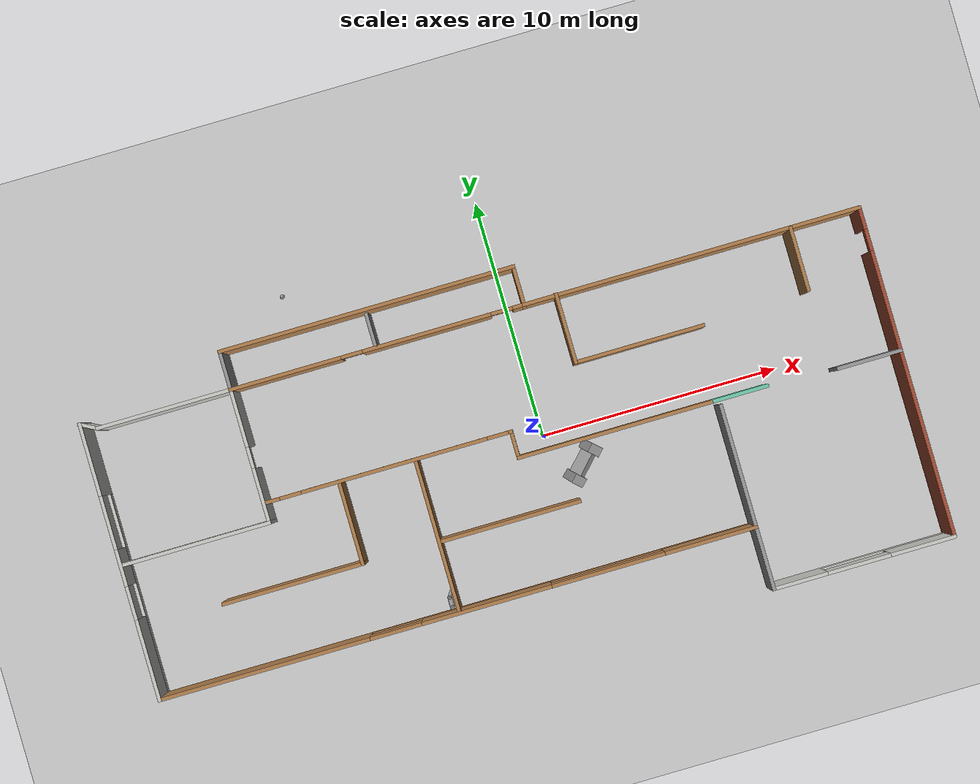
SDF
<sdf version="1.6">
 <world name="default">
  <model name="ground_plane">
   <static>1</static>
   <link name="link">
    <collision name="collision">
     <geometry><plane><normal>0 0 1</normal><size>100 100</size></plane></geometry>
     <surface>
      <contact><collide_bitmask>65535</collide_bitmask></contact>
      <friction><ode><mu>100</mu><mu2>50</mu2></ode></friction>
     </surface>
    </collision>
    <visual name="visual">
     <cast_shadows>0</cast_shadows>
     <geometry><plane><normal>0 0 1</normal><size>100 100</size></plane></geometry>
     <material>
      <script><uri>file://media/materials/scripts/gazebo.material</uri><name>Gazebo/Grey</name></script>
     </material>
    </visual>
   </link>
  </model>
  <model name="archi">
   <pose>-1.5352 -0.78074 0 0 -0 0</pose>
   <link name="Wall_0">
    <pose>-16.3367 0.675001 0 0 0 -1.5708</pose>
    <visual name="Wall_0_Visual_0">
     <pose>-4.32805 0 1.25 0 -0 0</pose>
     <geometry><box><size>3.0939 0.15 2.5</size></box></geometry>
     <material>
      <script><uri>file://media/materials/scripts/gazebo.material</uri><name>Gazebo/CeilingTiled</name></script>
      <ambient>1 1 1 1</ambient>
     </material>
     <meta><layer>0</layer></meta>
    </visual>
    <collision name="Wall_0_Collision_0">
     <geometry><box><size>3.0939 0.15 2.5</size></box></geometry>
     <pose>-4.32805 0 1.25 0 -0 0</pose>
    </collision>
    <visual name="Wall_0_Visual_1">
     <pose>1.54695 0 0.25 0 -0 0</pose>
     <geometry><box><size>8.6561 0.15 0.5</size></box></geometry>
     <material>
      <script><uri>file://media/materials/scripts/gazebo.material</uri><name>Gazebo/CeilingTiled</name></script>
      <ambient>1 1 1 1</ambient>
     </material>
     <meta><layer>0</layer></meta>
    </visual>
    <collision name="Wall_0_Collision_1">
     <geometry><box><size>8.6561 0.15 0.5</size></box></geometry>
     <pose>1.54695 0 0.25 0 -0 0</pose>
    </collision>
    <visual name="Wall_0_Visual_2">
     <pose>0.24907 0 1.5 0 -0 0</pose>
     <geometry><box><size>1.54754 0.15 2</size></box></geometry>
     <material>
      <script><uri>file://media/materials/scripts/gazebo.material</uri><name>Gazebo/CeilingTiled</name></script>
      <ambient>1 1 1 1</ambient>
     </material>
     <meta><layer>0</layer></meta>
    </visual>
    <collision name="Wall_0_Collision_2">
     <geometry><box><size>1.54754 0.15 2</size></box></geometry>
     <pose>0.24907 0 1.5 0 -0 0</pose>
    </collision>
    <visual name="Wall_0_Visual_3">
     <pose>4.15234 0 1.5 0 -0 0</pose>
     <geometry><box><size>3.44533 0.15 2</size></box></geometry>
     <material>
      <script><uri>file://media/materials/scripts/gazebo.material</uri><name>Gazebo/CeilingTiled</name></script>
      <ambient>1 1 1 1</ambient>
     </material>
     <meta><layer>0</layer></meta>
    </visual>
    <collision name="Wall_0_Collision_3">
     <geometry><box><size>3.44533 0.15 2</size></box></geometry>
     <pose>4.15234 0 1.5 0 -0 0</pose>
    </collision>
    <visual name="Wall_0_Visual_4">
     <pose>-1.6529 0 1.9 0 -0 0</pose>
     <geometry><box><size>2.2564 0.15 1.2</size></box></geometry>
     <material>
      <script><uri>file://media/materials/scripts/gazebo.material</uri><name>Gazebo/CeilingTiled</name></script>
      <ambient>1 1 1 1</ambient>
     </material>
     <meta><layer>0</layer></meta>
    </visual>
    <collision name="Wall_0_Collision_4">
     <geometry><box><size>2.2564 0.15 1.2</size></box></geometry>
     <pose>-1.6529 0 1.9 0 -0 0</pose>
    </collision>
    <visual name="Wall_0_Visual_5">
     <pose>1.72626 0 1.9 0 -0 0</pose>
     <geometry><box><size>1.40683 0.15 1.2</size></box></geometry>
     <material>
      <script><uri>file://media/materials/scripts/gazebo.material</uri><name>Gazebo/CeilingTiled</name></script>
      <ambient>1 1 1 1</ambient>
     </material>
     <meta><layer>0</layer></meta>
    </visual>
    <collision name="Wall_0_Collision_5">
     <geometry><box><size>1.40683 0.15 1.2</size></box></geometry>
     <pose>1.72626 0 1.9 0 -0 0</pose>
    </collision>
   </link>
   <link name="Wall_1">
    <pose>-3.7867 -5.125 0 0 -0 0</pose>
    <visual name="Wall_1_Visual_0">
     <pose>-8.15953 0 1.25 0 -0 0</pose>
     <geometry><box><size>8.93093 0.15 2.5</size></box></geometry>
     <material>
      <script><uri>file://media/materials/scripts/gazebo.material</uri><name>Gazebo/Wood</name></script>
      <ambient>1 1 1 1</ambient>
     </material>
     <meta><layer>0</layer></meta>
    </visual>
    <collision name="Wall_1_Collision_0">
     <geometry><box><size>8.93093 0.15 2.5</size></box></geometry>
     <pose>-8.15953 0 1.25 0 -0 0</pose>
    </collision>
    <visual name="Wall_1_Visual_1">
     <pose>4.46547 0 0.25 0 -0 0</pose>
     <geometry><box><size>16.3191 0.15 0.5</size></box></geometry>
     <material>
      <script><uri>file://media/materials/scripts/gazebo.material</uri><name>Gazebo/Wood</name></script>
      <ambient>1 1 1 1</ambient>
     </material>
     <meta><layer>0</layer></meta>
    </visual>
    <collision name="Wall_1_Collision_1">
     <geometry><box><size>16.3191 0.15 0.5</size></box></geometry>
     <pose>4.46547 0 0.25 0 -0 0</pose>
    </collision>
    <visual name="Wall_1_Visual_2">
     <pose>1.21911 0 1.5 0 -0 0</pose>
     <geometry><box><size>5.47537 0.15 2</size></box></geometry>
     <material>
      <script><uri>file://media/materials/scripts/gazebo.material</uri><name>Gazebo/Wood</name></script>
      <ambient>1 1 1 1</ambient>
     </material>
     <meta><layer>0</layer></meta>
    </visual>
    <collision name="Wall_1_Collision_2">
     <geometry><box><size>5.47537 0.15 2</size></box></geometry>
     <pose>1.21911 0 1.5 0 -0 0</pose>
    </collision>
    <visual name="Wall_1_Visual_3">
     <pose>10.6732 0 1.5 0 -0 0</pose>
     <geometry><box><size>3.90356 0.15 2</size></box></geometry>
     <material>
      <script><uri>file://media/materials/scripts/gazebo.material</uri><name>Gazebo/Wood</name></script>
      <ambient>1 1 1 1</ambient>
     </material>
     <meta><layer>0</layer></meta>
    </visual>
    <collision name="Wall_1_Collision_3">
     <geometry><box><size>3.90356 0.15 2</size></box></geometry>
     <pose>10.6732 0 1.5 0 -0 0</pose>
    </collision>
    <visual name="Wall_1_Visual_4">
     <pose>-2.60632 0 1.9 0 -0 0</pose>
     <geometry><box><size>2.17549 0.15 1.2</size></box></geometry>
     <material>
      <script><uri>file://media/materials/scripts/gazebo.material</uri><name>Gazebo/Wood</name></script>
      <ambient>1 1 1 1</ambient>
     </material>
     <meta><layer>0</layer></meta>
    </visual>
    <collision name="Wall_1_Collision_4">
     <geometry><box><size>2.17549 0.15 1.2</size></box></geometry>
     <pose>-2.60632 0 1.9 0 -0 0</pose>
    </collision>
    <visual name="Wall_1_Visual_5">
     <pose>6.33911 0 1.9 0 -0 0</pose>
     <geometry><box><size>4.76465 0.15 1.2</size></box></geometry>
     <material>
      <script><uri>file://media/materials/scripts/gazebo.material</uri><name>Gazebo/Wood</name></script>
      <ambient>1 1 1 1</ambient>
     </material>
     <meta><layer>0</layer></meta>
    </visual>
    <collision name="Wall_1_Collision_5">
     <geometry><box><size>4.76465 0.15 1.2</size></box></geometry>
     <pose>6.33911 0 1.9 0 -0 0</pose>
    </collision>
   </link>
   <link name="Wall_10">
    <collision name="Wall_10_Collision">
     <geometry><box><size>0.888241 0.15 2.5</size></box></geometry>
     <pose>0 0 1.25 0 -0 0</pose>
    </collision>
    <visual name="Wall_10_Visual">
     <pose>0 0 1.25 0 -0 0</pose>
     <geometry><box><size>0.888241 0.15 2.5</size></box></geometry>
     <material>
      <script><uri>file://media/materials/scripts/gazebo.material</uri><name>Gazebo/CeilingTiled</name></script>
      <ambient>1 1 1 1</ambient>
     </material>
     <meta><layer>0</layer></meta>
    </visual>
    <pose>-16.0117 6.3 0 0 -0 2.64765</pose>
   </link>
   <link name="Wall_12">
    <pose>-3.9117 6.125 0 0 -0 0</pose>
    <visual name="Wall_12_Visual_0">
     <pose>-3.89123 0 1.25 0 -0 0</pose>
     <geometry><box><size>4.71753 0.15 2.5</size></box></geometry>
     <material>
      <script><uri>file://media/materials/scripts/gazebo.material</uri><name>Gazebo/Wood</name></script>
      <ambient>1 1 1 1</ambient>
     </material>
     <meta><layer>0</layer></meta>
    </visual>
    <collision name="Wall_12_Collision_0">
     <geometry><box><size>4.71753 0.15 2.5</size></box></geometry>
     <pose>-3.89123 0 1.25 0 -0 0</pose>
    </collision>
    <visual name="Wall_12_Visual_1">
     <pose>2.07418 0 1.25 0 -0 0</pose>
     <geometry><box><size>5.41329 0.15 2.5</size></box></geometry>
     <material>
      <script><uri>file://media/materials/scripts/gazebo.material</uri><name>Gazebo/Wood</name></script>
      <ambient>1 1 1 1</ambient>
     </material>
     <meta><layer>0</layer></meta>
    </visual>
    <collision name="Wall_12_Collision_1">
     <geometry><box><size>5.41329 0.15 2.5</size></box></geometry>
     <pose>2.07418 0 1.25 0 -0 0</pose>
    </collision>
    <visual name="Wall_12_Visual_2">
     <pose>5.96541 0 1.25 0 -0 0</pose>
     <geometry><box><size>0.569174 0.15 2.5</size></box></geometry>
     <material>
      <script><uri>file://media/materials/scripts/gazebo.material</uri><name>Gazebo/Wood</name></script>
      <ambient>1 1 1 1</ambient>
     </material>
     <meta><layer>0</layer></meta>
    </visual>
    <collision name="Wall_12_Collision_2">
     <geometry><box><size>0.569174 0.15 2.5</size></box></geometry>
     <pose>5.96541 0 1.25 0 -0 0</pose>
    </collision>
    <visual name="Wall_12_Visual_3">
     <pose>-1.08247 0 2.25 0 -0 0</pose>
     <geometry><box><size>0.9 0.15 0.5</size></box></geometry>
     <material>
      <script><uri>file://media/materials/scripts/gazebo.material</uri><name>Gazebo/Wood</name></script>
      <ambient>1 1 1 1</ambient>
     </material>
     <meta><layer>0</layer></meta>
    </visual>
    <collision name="Wall_12_Collision_3">
     <geometry><box><size>0.9 0.15 0.5</size></box></geometry>
     <pose>-1.08247 0 2.25 0 -0 0</pose>
    </collision>
    <visual name="Wall_12_Visual_4">
     <pose>5.23083 0 2.25 0 -0 0</pose>
     <geometry><box><size>0.9 0.15 0.5</size></box></geometry>
     <material>
      <script><uri>file://media/materials/scripts/gazebo.material</uri><name>Gazebo/Wood</name></script>
      <ambient>1 1 1 1</ambient>
     </material>
     <meta><layer>0</layer></meta>
    </visual>
    <collision name="Wall_12_Collision_4">
     <geometry><box><size>0.9 0.15 0.5</size></box></geometry>
     <pose>5.23083 0 2.25 0 -0 0</pose>
    </collision>
   </link>
   <link name="Wall_14">
    <collision name="Wall_14_Collision">
     <geometry><box><size>1.5 0.15 2.5</size></box></geometry>
     <pose>0 0 1.25 0 -0 0</pose>
    </collision>
    <visual name="Wall_14_Visual">
     <pose>0 0 1.25 0 -0 0</pose>
     <geometry><box><size>1.5 0.15 2.5</size></box></geometry>
     <material>
      <script><uri>file://media/materials/scripts/gazebo.material</uri><name>Gazebo/Grey</name></script>
      <ambient>1 1 1 1</ambient>
     </material>
     <meta><layer>0</layer></meta>
    </visual>
    <pose>-3.97763 6.82899 0 0 -0 1.5708</pose>
   </link>
   <link name="Wall_16">
    <pose>-10.0867 3.325 0 0 0 -1.5708</pose>
    <visual name="Wall_16_Visual_0">
     <pose>-1.63243 0 1.25 0 -0 0</pose>
     <geometry><box><size>2.48515 0.15 2.5</size></box></geometry>
     <material>
      <script><uri>file://media/materials/scripts/gazebo.material</uri><name>Gazebo/CeilingTiled</name></script>
      <ambient>1 1 1 1</ambient>
     </material>
     <meta><layer>0</layer></meta>
    </visual>
    <collision name="Wall_16_Collision_0">
     <geometry><box><size>2.48515 0.15 2.5</size></box></geometry>
     <pose>-1.63243 0 1.25 0 -0 0</pose>
    </collision>
    <visual name="Wall_16_Visual_1">
     <pose>1.69257 0 1.25 0 -0 0</pose>
     <geometry><box><size>2.36485 0.15 2.5</size></box></geometry>
     <material>
      <script><uri>file://media/materials/scripts/gazebo.material</uri><name>Gazebo/CeilingTiled</name></script>
      <ambient>1 1 1 1</ambient>
     </material>
     <meta><layer>0</layer></meta>
    </visual>
    <collision name="Wall_16_Collision_1">
     <geometry><box><size>2.36485 0.15 2.5</size></box></geometry>
     <pose>1.69257 0 1.25 0 -0 0</pose>
    </collision>
    <visual name="Wall_16_Visual_2">
     <pose>0.06015 0 2.25 0 -0 0</pose>
     <geometry><box><size>0.9 0.15 0.5</size></box></geometry>
     <material>
      <script><uri>file://media/materials/scripts/gazebo.material</uri><name>Gazebo/CeilingTiled</name></script>
      <ambient>1 1 1 1</ambient>
     </material>
     <meta><layer>0</layer></meta>
    </visual>
    <collision name="Wall_16_Collision_2">
     <geometry><box><size>0.9 0.15 0.5</size></box></geometry>
     <pose>0.06015 0 2.25 0 -0 0</pose>
    </collision>
   </link>
   <link name="Wall_17">
    <collision name="Wall_17_Collision">
     <geometry><box><size>6.25 0.15 2.5</size></box></geometry>
     <pose>0 0 1.25 0 -0 0</pose>
    </collision>
    <visual name="Wall_17_Visual">
     <pose>0 0 1.25 0 -0 0</pose>
     <geometry><box><size>6.25 0.15 2.5</size></box></geometry>
     <material>
      <script><uri>file://media/materials/scripts/gazebo.material</uri><name>Gazebo/CeilingTiled</name></script>
      <ambient>1 1 1 1</ambient>
     </material>
     <meta><layer>0</layer></meta>
    </visual>
    <pose>-13.1367 0.525001 0 0 -0 3.14159</pose>
   </link>
   <link name="Wall_2">
    <collision name="Wall_2_Collision">
     <geometry><box><size>2.75 0.15 2.5</size></box></geometry>
     <pose>0 0 1.25 0 -0 0</pose>
    </collision>
    <visual name="Wall_2_Visual">
     <pose>0 0 1.25 0 -0 0</pose>
     <geometry><box><size>2.75 0.15 2.5</size></box></geometry>
     <material>
      <script><uri>file://media/materials/scripts/gazebo.material</uri><name>Gazebo/Grey</name></script>
      <ambient>1 1 1 1</ambient>
     </material>
     <meta><layer>0</layer></meta>
    </visual>
    <pose>8.7633 -6.425 0 0 0 -1.5708</pose>
   </link>
   <link name="Wall_23">
    <pose>-4.84841 1.33876 0 0 -0 0</pose>
    <visual name="Wall_23_Visual_0">
     <pose>-4.90247 0 1.25 0 -0 0</pose>
     <geometry><box><size>0.69505 0.15 2.5</size></box></geometry>
     <material>
      <script><uri>file://media/materials/scripts/gazebo.material</uri><name>Gazebo/Wood</name></script>
      <ambient>0.435294 0.796078 0.67451 1</ambient>
     </material>
     <meta><layer>0</layer></meta>
    </visual>
    <collision name="Wall_23_Collision_0">
     <geometry><box><size>0.69505 0.15 2.5</size></box></geometry>
     <pose>-4.90247 0 1.25 0 -0 0</pose>
    </collision>
    <visual name="Wall_23_Visual_1">
     <pose>0.255504 0 1.25 0 -0 0</pose>
     <geometry><box><size>7.82091 0.15 2.5</size></box></geometry>
     <material>
      <script><uri>file://media/materials/scripts/gazebo.material</uri><name>Gazebo/Wood</name></script>
      <ambient>0.435294 0.796078 0.67451 1</ambient>
     </material>
     <meta><layer>0</layer></meta>
    </visual>
    <collision name="Wall_23_Collision_1">
     <geometry><box><size>7.82091 0.15 2.5</size></box></geometry>
     <pose>0.255504 0 1.25 0 -0 0</pose>
    </collision>
    <visual name="Wall_23_Visual_2">
     <pose>5.15798 0 1.25 0 -0 0</pose>
     <geometry><box><size>0.184042 0.15 2.5</size></box></geometry>
     <material>
      <script><uri>file://media/materials/scripts/gazebo.material</uri><name>Gazebo/Wood</name></script>
      <ambient>0.435294 0.796078 0.67451 1</ambient>
     </material>
     <meta><layer>0</layer></meta>
    </visual>
    <collision name="Wall_23_Collision_2">
     <geometry><box><size>0.184042 0.15 2.5</size></box></geometry>
     <pose>5.15798 0 1.25 0 -0 0</pose>
    </collision>
    <visual name="Wall_23_Visual_3">
     <pose>-4.10495 0 2.25 0 -0 0</pose>
     <geometry><box><size>0.9 0.15 0.5</size></box></geometry>
     <material>
      <script><uri>file://media/materials/scripts/gazebo.material</uri><name>Gazebo/Wood</name></script>
      <ambient>0.435294 0.796078 0.67451 1</ambient>
     </material>
     <meta><layer>0</layer></meta>
    </visual>
    <collision name="Wall_23_Collision_3">
     <geometry><box><size>0.9 0.15 0.5</size></box></geometry>
     <pose>-4.10495 0 2.25 0 -0 0</pose>
    </collision>
    <visual name="Wall_23_Visual_4">
     <pose>4.61596 0 2.25 0 -0 0</pose>
     <geometry><box><size>0.9 0.15 0.5</size></box></geometry>
     <material>
      <script><uri>file://media/materials/scripts/gazebo.material</uri><name>Gazebo/Wood</name></script>
      <ambient>0.435294 0.796078 0.67451 1</ambient>
     </material>
     <meta><layer>0</layer></meta>
    </visual>
    <collision name="Wall_23_Collision_4">
     <geometry><box><size>0.9 0.15 0.5</size></box></geometry>
     <pose>4.61596 0 2.25 0 -0 0</pose>
    </collision>
   </link>
   <link name="Wall_24">
    <collision name="Wall_24_Collision">
     <geometry><box><size>1.25 0.15 2.5</size></box></geometry>
     <pose>0 0 1.25 0 -0 0</pose>
    </collision>
    <visual name="Wall_24_Visual">
     <pose>0 0 1.25 0 -0 0</pose>
     <geometry><box><size>1.25 0.15 2.5</size></box></geometry>
     <material>
      <script><uri>file://media/materials/scripts/gazebo.material</uri><name>Gazebo/Wood</name></script>
      <ambient>1 1 1 1</ambient>
     </material>
     <meta><layer>0</layer></meta>
    </visual>
    <pose>0.326592 0.788761 0 0 0 -1.5708</pose>
   </link>
   <link name="Wall_25">
    <collision name="Wall_25_Collision">
     <geometry><box><size>8.25 0.15 2.5</size></box></geometry>
     <pose>0 0 1.25 0 -0 0</pose>
    </collision>
    <visual name="Wall_25_Visual">
     <pose>0 0 1.25 0 -0 0</pose>
     <geometry><box><size>8.25 0.15 2.5</size></box></geometry>
     <material>
      <script><uri>file://media/materials/scripts/gazebo.material</uri><name>Gazebo/Wood</name></script>
      <ambient>0.435294 0.796078 0.67451 1</ambient>
     </material>
     <meta><layer>0</layer></meta>
    </visual>
    <pose>4.37659 0.238761 0 0 -0 0</pose>
   </link>
   <link name="Wall_27">
    <collision name="Wall_27_Collision">
     <geometry><box><size>5.25 0.15 2.5</size></box></geometry>
     <pose>0 0 1.25 0 -0 0</pose>
    </collision>
    <visual name="Wall_27_Visual">
     <pose>0 0 1.25 0 -0 0</pose>
     <geometry><box><size>5.25 0.15 2.5</size></box></geometry>
     <material>
      <script><uri>file://media/materials/scripts/gazebo.material</uri><name>Gazebo/Grey</name></script>
      <ambient>1 1 1 1</ambient>
     </material>
     <meta><layer>0</layer></meta>
    </visual>
    <pose>8.7633 -2.575 0 0 -0 1.5708</pose>
   </link>
   <link name="Wall_29">
    <collision name="Wall_29_Collision">
     <geometry><box><size>2.5 0.15 2.5</size></box></geometry>
     <pose>0 0 1.25 0 -0 0</pose>
    </collision>
    <visual name="Wall_29_Visual">
     <pose>0 0 1.25 0 -0 0</pose>
     <geometry><box><size>2.5 0.15 2.5</size></box></geometry>
     <material>
      <script><uri>file://media/materials/scripts/gazebo.material</uri><name>Gazebo/Grey</name></script>
      <ambient>0.435294 0.796078 0.67451 1</ambient>
     </material>
     <meta><layer>0</layer></meta>
    </visual>
    <pose>9.60159 0.238761 0 0 -0 0</pose>
   </link>
   <link name="Wall_3">
    <pose>12.5633 -7.725 0 0 -0 0</pose>
    <visual name="Wall_3_Visual_0">
     <pose>-2.7036 0 1.25 0 -0 0</pose>
     <geometry><box><size>2.3428 0.15 2.5</size></box></geometry>
     <material>
      <script><uri>file://media/materials/scripts/gazebo.material</uri><name>Gazebo/CeilingTiled</name></script>
      <ambient>1 1 1 1</ambient>
     </material>
     <meta><layer>0</layer></meta>
    </visual>
    <collision name="Wall_3_Collision_0">
     <geometry><box><size>2.3428 0.15 2.5</size></box></geometry>
     <pose>-2.7036 0 1.25 0 -0 0</pose>
    </collision>
    <visual name="Wall_3_Visual_1">
     <pose>1.1714 0 0.25 0 -0 0</pose>
     <geometry><box><size>5.4072 0.15 0.5</size></box></geometry>
     <material>
      <script><uri>file://media/materials/scripts/gazebo.material</uri><name>Gazebo/CeilingTiled</name></script>
      <ambient>1 1 1 1</ambient>
     </material>
     <meta><layer>0</layer></meta>
    </visual>
    <collision name="Wall_3_Collision_1">
     <geometry><box><size>5.4072 0.15 0.5</size></box></geometry>
     <pose>1.1714 0 0.25 0 -0 0</pose>
    </collision>
    <visual name="Wall_3_Visual_2">
     <pose>2.50188 0 1.5 0 -0 0</pose>
     <geometry><box><size>2.74625 0.15 2</size></box></geometry>
     <material>
      <script><uri>file://media/materials/scripts/gazebo.material</uri><name>Gazebo/CeilingTiled</name></script>
      <ambient>1 1 1 1</ambient>
     </material>
     <meta><layer>0</layer></meta>
    </visual>
    <collision name="Wall_3_Collision_2">
     <geometry><box><size>2.74625 0.15 2</size></box></geometry>
     <pose>2.50188 0 1.5 0 -0 0</pose>
    </collision>
    <visual name="Wall_3_Visual_3">
     <pose>-0.201723 0 1.9 0 -0 0</pose>
     <geometry><box><size>2.66096 0.15 1.2</size></box></geometry>
     <material>
      <script><uri>file://media/materials/scripts/gazebo.material</uri><name>Gazebo/CeilingTiled</name></script>
      <ambient>1 1 1 1</ambient>
     </material>
     <meta><layer>0</layer></meta>
    </visual>
    <collision name="Wall_3_Collision_3">
     <geometry><box><size>2.66096 0.15 1.2</size></box></geometry>
     <pose>-0.201723 0 1.9 0 -0 0</pose>
    </collision>
   </link>
   <link name="Wall_31">
    <collision name="Wall_31_Collision">
     <geometry><box><size>2.75 0.15 2.5</size></box></geometry>
     <pose>0 0 1.25 0 -0 0</pose>
    </collision>
    <visual name="Wall_31_Visual">
     <pose>0 0 1.25 0 -0 0</pose>
     <geometry><box><size>2.75 0.15 2.5</size></box></geometry>
     <material>
      <script><uri>file://media/materials/scripts/gazebo.material</uri><name>Gazebo/Grey</name></script>
      <ambient>1 1 1 1</ambient>
     </material>
     <meta><layer>0</layer></meta>
    </visual>
    <pose>15.0533 0.108203 0 0 -0 3.14159</pose>
   </link>
   <link name="Wall_33">
    <collision name="Wall_33_Collision">
     <geometry><box><size>6.5 0.15 2.5</size></box></geometry>
     <pose>0 0 1.25 0 -0 0</pose>
    </collision>
    <visual name="Wall_33_Visual">
     <pose>0 0 1.25 0 -0 0</pose>
     <geometry><box><size>6.5 0.15 2.5</size></box></geometry>
     <material>
      <script><uri>file://media/materials/scripts/gazebo.material</uri><name>Gazebo/Wood</name></script>
      <ambient>0.435294 0.796078 0.67451 1</ambient>
     </material>
     <meta><layer>0</layer></meta>
    </visual>
    <pose>-3.71011 -1.94324 0 0 0 -1.5708</pose>
   </link>
   <link name="Wall_35">
    <collision name="Wall_35_Collision">
     <geometry><box><size>2.75 0.15 2.5</size></box></geometry>
     <pose>0 0 1.25 0 -0 0</pose>
    </collision>
    <visual name="Wall_35_Visual">
     <pose>0 0 1.25 0 -0 0</pose>
     <geometry><box><size>2.75 0.15 2.5</size></box></geometry>
     <material>
      <script><uri>file://media/materials/scripts/gazebo.material</uri><name>Gazebo/Wood</name></script>
      <ambient>1 1 1 1</ambient>
     </material>
     <meta><layer>0</layer></meta>
    </visual>
    <pose>13.4642 4.80048 0 0 0 -1.5708</pose>
   </link>
   <link name="Wall_37">
    <collision name="Wall_37_Collision">
     <geometry><box><size>3.5 0.15 2.5</size></box></geometry>
     <pose>0 0 1.25 0 -0 0</pose>
    </collision>
    <visual name="Wall_37_Visual">
     <pose>0 0 1.25 0 -0 0</pose>
     <geometry><box><size>3.5 0.15 2.5</size></box></geometry>
     <material>
      <script><uri>file://media/materials/scripts/gazebo.material</uri><name>Gazebo/Wood</name></script>
      <ambient>1 1 1 1</ambient>
     </material>
     <meta><layer>0</layer></meta>
    </visual>
    <pose>-6.92026 -0.443244 0 0 0 -1.5708</pose>
   </link>
   <link name="Wall_38">
    <collision name="Wall_38_Collision">
     <geometry><box><size>6 0.15 2.5</size></box></geometry>
     <pose>0 0 1.25 0 -0 0</pose>
    </collision>
    <visual name="Wall_38_Visual">
     <pose>0 0 1.25 0 -0 0</pose>
     <geometry><box><size>6 0.15 2.5</size></box></geometry>
     <material>
      <script><uri>file://media/materials/scripts/gazebo.material</uri><name>Gazebo/Wood</name></script>
      <ambient>1 1 1 1</ambient>
     </material>
     <meta><layer>0</layer></meta>
    </visual>
    <pose>-9.84526 -2.11824 0 0 -0 3.14159</pose>
   </link>
   <link name="Wall_4">
    <pose>16.3633 -0.799999 0 0 -0 1.5708</pose>
    <visual name="Wall_4_Visual_0">
     <pose>-0.94354 0 1.25 0 -0 0</pose>
     <geometry><box><size>12.1129 0.15 2.5</size></box></geometry>
     <material>
      <script><uri>file://media/materials/scripts/gazebo.material</uri><name>Gazebo/Bricks</name></script>
      <ambient>1 1 1 1</ambient>
     </material>
     <meta><layer>0</layer></meta>
    </visual>
    <collision name="Wall_4_Collision_0">
     <geometry><box><size>12.1129 0.15 2.5</size></box></geometry>
     <pose>-0.94354 0 1.25 0 -0 0</pose>
    </collision>
    <visual name="Wall_4_Visual_1">
     <pose>6.50646 0 1.25 0 -0 0</pose>
     <geometry><box><size>0.98708 0.15 2.5</size></box></geometry>
     <material>
      <script><uri>file://media/materials/scripts/gazebo.material</uri><name>Gazebo/Bricks</name></script>
      <ambient>1 1 1 1</ambient>
     </material>
     <meta><layer>0</layer></meta>
    </visual>
    <collision name="Wall_4_Collision_1">
     <geometry><box><size>0.98708 0.15 2.5</size></box></geometry>
     <pose>6.50646 0 1.25 0 -0 0</pose>
    </collision>
    <visual name="Wall_4_Visual_2">
     <pose>5.56292 0 2.25 0 -0 0</pose>
     <geometry><box><size>0.9 0.15 0.5</size></box></geometry>
     <material>
      <script><uri>file://media/materials/scripts/gazebo.material</uri><name>Gazebo/Bricks</name></script>
      <ambient>1 1 1 1</ambient>
     </material>
     <meta><layer>0</layer></meta>
    </visual>
    <collision name="Wall_4_Collision_2">
     <geometry><box><size>0.9 0.15 0.5</size></box></geometry>
     <pose>5.56292 0 2.25 0 -0 0</pose>
    </collision>
   </link>
   <link name="Wall_40">
    <collision name="Wall_40_Collision">
     <geometry><box><size>6 0.15 2.5</size></box></geometry>
     <pose>0 0 1.25 0 -0 0</pose>
    </collision>
    <visual name="Wall_40_Visual">
     <pose>0 0 1.25 0 -0 0</pose>
     <geometry><box><size>6 0.15 2.5</size></box></geometry>
     <material>
      <script><uri>file://media/materials/scripts/gazebo.material</uri><name>Gazebo/Wood</name></script>
      <ambient>0.435294 0.796078 0.67451 1</ambient>
     </material>
     <meta><layer>0</layer></meta>
    </visual>
    <pose>-0.731611 -2.1389 0 0 -0 0</pose>
   </link>
   <link name="Wall_42">
    <collision name="Wall_42_Collision">
     <geometry><box><size>3 0.15 2.5</size></box></geometry>
     <pose>0 0 1.25 0 -0 0</pose>
    </collision>
    <visual name="Wall_42_Visual">
     <pose>0 0 1.25 0 -0 0</pose>
     <geometry><box><size>3 0.15 2.5</size></box></geometry>
     <material>
      <script><uri>file://media/materials/scripts/gazebo.material</uri><name>Gazebo/Wood</name></script>
      <ambient>1 1 1 1</ambient>
     </material>
     <meta><layer>0</layer></meta>
    </visual>
    <pose>3.61973 4.72899 0 0 0 -1.5708</pose>
   </link>
   <link name="Wall_43">
    <collision name="Wall_43_Collision">
     <geometry><box><size>5.5 0.15 2.5</size></box></geometry>
     <pose>0 0 1.25 0 -0 0</pose>
    </collision>
    <visual name="Wall_43_Visual">
     <pose>0 0 1.25 0 -0 0</pose>
     <geometry><box><size>5.5 0.15 2.5</size></box></geometry>
     <material>
      <script><uri>file://media/materials/scripts/gazebo.material</uri><name>Gazebo/Wood</name></script>
      <ambient>1 1 1 1</ambient>
     </material>
     <meta><layer>0</layer></meta>
    </visual>
    <pose>6.29473 3.30399 0 0 -0 0</pose>
   </link>
   <link name="Wall_5">
    <collision name="Wall_5_Collision">
     <geometry><box><size>14.25 0.15 2.5</size></box></geometry>
     <pose>0 0 1.25 0 -0 0</pose>
    </collision>
    <visual name="Wall_5_Visual">
     <pose>0 0 1.25 0 -0 0</pose>
     <geometry><box><size>14.25 0.15 2.5</size></box></geometry>
     <material>
      <script><uri>file://media/materials/scripts/gazebo.material</uri><name>Gazebo/Wood</name></script>
      <ambient>1 1 1 1</ambient>
     </material>
     <meta><layer>0</layer></meta>
    </visual>
    <pose>9.3133 6.125 0 0 -0 3.14159</pose>
   </link>
   <link name="Wall_6">
    <collision name="Wall_6_Collision">
     <geometry><box><size>1.75 0.15 2.5</size></box></geometry>
     <pose>0 0 1.25 0 -0 0</pose>
    </collision>
    <visual name="Wall_6_Visual">
     <pose>0 0 1.25 0 -0 0</pose>
     <geometry><box><size>1.75 0.15 2.5</size></box></geometry>
     <material>
      <script><uri>file://media/materials/scripts/gazebo.material</uri><name>Gazebo/Wood</name></script>
      <ambient>1 1 1 1</ambient>
     </material>
     <meta><layer>0</layer></meta>
    </visual>
    <pose>2.2633 6.925 0 0 -0 1.5708</pose>
   </link>
   <link name="Wall_7">
    <collision name="Wall_7_Collision">
     <geometry><box><size>12.5 0.15 2.5</size></box></geometry>
     <pose>0 0 1.25 0 -0 0</pose>
    </collision>
    <visual name="Wall_7_Visual">
     <pose>0 0 1.25 0 -0 0</pose>
     <geometry><box><size>12.5 0.15 2.5</size></box></geometry>
     <material>
      <script><uri>file://media/materials/scripts/gazebo.material</uri><name>Gazebo/Wood</name></script>
      <ambient>1 1 1 1</ambient>
     </material>
     <meta><layer>0</layer></meta>
    </visual>
    <pose>-3.9117 7.725 0 0 -0 3.14159</pose>
   </link>
   <link name="Wall_8">
    <collision name="Wall_8_Collision">
     <geometry><box><size>1.75 0.15 2.5</size></box></geometry>
     <pose>0 0 1.25 0 -0 0</pose>
    </collision>
    <visual name="Wall_8_Visual">
     <pose>0 0 1.25 0 -0 0</pose>
     <geometry><box><size>1.75 0.15 2.5</size></box></geometry>
     <material>
      <script><uri>file://media/materials/scripts/gazebo.material</uri><name>Gazebo/Grey</name></script>
      <ambient>1 1 1 1</ambient>
     </material>
     <meta><layer>0</layer></meta>
    </visual>
    <pose>-10.0867 6.925 0 0 0 -1.5708</pose>
   </link>
   <link name="Wall_9">
    <collision name="Wall_9_Collision">
     <geometry><box><size>5.75 0.15 2.5</size></box></geometry>
     <pose>0 0 1.25 0 -0 0</pose>
    </collision>
    <visual name="Wall_9_Visual">
     <pose>0 0 1.25 0 -0 0</pose>
     <geometry><box><size>5.75 0.15 2.5</size></box></geometry>
     <material>
      <script><uri>file://media/materials/scripts/gazebo.material</uri><name>Gazebo/CeilingTiled</name></script>
      <ambient>1 1 1 1</ambient>
     </material>
     <meta><layer>0</layer></meta>
    </visual>
    <pose>-12.8867 6.125 0 0 -0 3.14159</pose>
   </link>
   <static>1</static>
  </model>
  <model name="mybot1">
   <link name="link_0">
    <inertial>
     <mass>1</mass>
     <inertia>
      <ixx>0.166667</ixx>
      <ixy>0</ixy>
      <ixz>0</ixz>
      <iyy>0.166667</iyy>
      <iyz>0</iyz>
      <izz>0.166667</izz>
     </inertia>
     <pose>0 0 1 0 -0 0</pose>
    </inertial>
    <visual name="visual">
     <pose>0 0 0 0 -0.1 0</pose>
     <geometry><box><size>0.5 1 2</size></box></geometry>
     <material>
      <lighting>1</lighting>
      <script><uri>file://media/materials/scripts/gazebo.material</uri><name>Gazebo/Grey</name></script>
      <shader type="pixel"><normal_map>__default__</normal_map></shader>
      <ambient>0.3 0.3 0.3 1</ambient>
      <diffuse>0.7 0.7 0.7 1</diffuse>
      <specular>0.01 0.01 0.01 1</specular>
      <emissive>0 0 0 1</emissive>
     </material>
    </visual>
    <collision name="collision">
     <pose>0 0 0 0 -0.1 0</pose>
     <geometry><box><size>0.5 1 2</size></box></geometry>
     <surface>
      <friction>
       <ode><mu>1</mu><mu2>1</mu2><fdir1>0 0 0</fdir1><slip1>0</slip1><slip2>0</slip2></ode>
       <torsional>
        <coefficient>1</coefficient>
        <patch_radius>0</patch_radius>
        <surface_radius>0</surface_radius>
        <use_patch_radius>1</use_patch_radius>
        <ode><slip>0</slip></ode>
       </torsional>
      </friction>
      <bounce><restitution_coefficient>0</restitution_coefficient><threshold>1e+06</threshold></bounce>
      <contact>
       <collide_without_contact>0</collide_without_contact>
       <collide_without_contact_bitmask>1</collide_without_contact_bitmask>
       <collide_bitmask>1</collide_bitmask>
       <ode>
        <soft_cfm>0</soft_cfm>
        <soft_erp>0.2</soft_erp>
        <kp>1e+13</kp>
        <kd>1</kd>
        <max_vel>0.01</max_vel>
        <min_depth>0</min_depth>
       </ode>
       <bullet>
        <split_impulse>1</split_impulse>
        <split_impulse_penetration_threshold>-0.01</split_impulse_penetration_threshold>
        <soft_cfm>0</soft_cfm>
        <soft_erp>0.2</soft_erp>
        <kp>1e+13</kp>
        <kd>1</kd>
       </bullet>
      </contact>
     </surface>
    </collision>
   </link>
   <link name="link_0_clone">
    <pose>-0 -0.7 0 0 -0 0</pose>
    <inertial>
     <mass>1</mass>
     <inertia>
      <ixx>0.166667</ixx>
      <ixy>0</ixy>
      <ixz>0</ixz>
      <iyy>0.166667</iyy>
      <iyz>0</iyz>
      <izz>0.166667</izz>
     </inertia>
     <pose>0 0 1 0 -0 0</pose>
    </inertial>
    <visual name="visual">
     <pose>0 0 0 0 0.2 0</pose>
     <geometry><box><size>0.5 0.4 2</size></box></geometry>
     <material>
      <lighting>1</lighting>
      <script><uri>file://media/materials/scripts/gazebo.material</uri><name>Gazebo/Grey</name></script>
      <shader type="pixel"><normal_map>__default__</normal_map></shader>
      <ambient>0.3 0.3 0.3 1</ambient>
      <diffuse>0.7 0.7 0.7 1</diffuse>
      <specular>0.01 0.01 0.01 1</specular>
      <emissive>0 0 0 1</emissive>
     </material>
    </visual>
    <collision name="collision">
     <pose>0 0 0 0 0.2 0</pose>
     <geometry><box><size>0.5 0.4 2</size></box></geometry>
     <surface>
      <friction>
       <ode><mu>1</mu><mu2>1</mu2><fdir1>0 0 0</fdir1><slip1>0</slip1><slip2>0</slip2></ode>
       <torsional>
        <coefficient>1</coefficient>
        <patch_radius>0</patch_radius>
        <surface_radius>0</surface_radius>
        <use_patch_radius>1</use_patch_radius>
        <ode><slip>0</slip></ode>
       </torsional>
      </friction>
      <bounce><restitution_coefficient>0</restitution_coefficient><threshold>1e+06</threshold></bounce>
      <contact>
       <collide_without_contact>0</collide_without_contact>
       <collide_without_contact_bitmask>1</collide_without_contact_bitmask>
       <collide_bitmask>1</collide_bitmask>
       <ode>
        <soft_cfm>0</soft_cfm>
        <soft_erp>0.2</soft_erp>
        <kp>1e+13</kp>
        <kd>1</kd>
        <max_vel>0.01</max_vel>
        <min_depth>0</min_depth>
       </ode>
       <bullet>
        <split_impulse>1</split_impulse>
        <split_impulse_penetration_threshold>-0.01</split_impulse_penetration_threshold>
        <soft_cfm>0</soft_cfm>
        <soft_erp>0.2</soft_erp>
        <kp>1e+13</kp>
        <kd>1</kd>
       </bullet>
      </contact>
     </surface>
    </collision>
   </link>
   <link name="link_0_clone_clone">
    <pose>-0 0.7 0 0 -0 0</pose>
    <inertial>
     <mass>1</mass>
     <inertia>
      <ixx>0.166667</ixx>
      <ixy>0</ixy>
      <ixz>0</ixz>
      <iyy>0.166667</iyy>
      <iyz>0</iyz>
      <izz>0.166667</izz>
     </inertia>
     <pose>0 0 1 0 -0 0</pose>
    </inertial>
    <visual name="visual">
     <pose>0 0 0 0 0.2 0</pose>
     <geometry><box><size>0.5 0.4 2</size></box></geometry>
     <material>
      <lighting>1</lighting>
      <script><uri>file://media/materials/scripts/gazebo.material</uri><name>Gazebo/Grey</name></script>
      <shader type="pixel"><normal_map>__default__</normal_map></shader>
      <ambient>0.3 0.3 0.3 1</ambient>
      <diffuse>0.7 0.7 0.7 1</diffuse>
      <specular>0.01 0.01 0.01 1</specular>
      <emissive>0 0 0 1</emissive>
     </material>
    </visual>
    <collision name="collision">
     <pose>0 0 0 0 0.2 0</pose>
     <geometry><box><size>0.5 0.4 2</size></box></geometry>
     <surface>
      <friction>
       <ode><mu>1</mu><mu2>1</mu2><fdir1>0 0 0</fdir1><slip1>0</slip1><slip2>0</slip2></ode>
       <torsional>
        <coefficient>1</coefficient>
        <patch_radius>0</patch_radius>
        <surface_radius>0</surface_radius>
        <use_patch_radius>1</use_patch_radius>
        <ode><slip>0</slip></ode>
       </torsional>
      </friction>
      <bounce><restitution_coefficient>0</restitution_coefficient><threshold>1e+06</threshold></bounce>
      <contact>
       <collide_without_contact>0</collide_without_contact>
       <collide_without_contact_bitmask>1</collide_without_contact_bitmask>
       <collide_bitmask>1</collide_bitmask>
       <ode>
        <soft_cfm>0</soft_cfm>
        <soft_erp>0.2</soft_erp>
        <kp>1e+13</kp>
        <kd>1</kd>
        <max_vel>0.01</max_vel>
        <min_depth>0</min_depth>
       </ode>
       <bullet>
        <split_impulse>1</split_impulse>
        <split_impulse_penetration_threshold>-0.01</split_impulse_penetration_threshold>
        <soft_cfm>0</soft_cfm>
        <soft_erp>0.2</soft_erp>
        <kp>1e+13</kp>
        <kd>1</kd>
       </bullet>
      </contact>
     </surface>
    </collision>
   </link>
   <joint name="link_0_JOINT_1" type="revolute">
    <parent>link_0</parent>
    <child>link_0_clone_clone</child>
    <axis>
     <xyz>0 0 1</xyz>
     <use_parent_model_frame>0</use_parent_model_frame>
     <limit>
      <lower>-1.79769e+308</lower>
      <upper>1.79769e+308</upper>
      <effort>-1</effort>
      <velocity>-1</velocity>
     </limit>
     <dynamics>
      <spring_reference>0</spring_reference>
      <spring_stiffness>0</spring_stiffness>
      <damping>0</damping>
     </dynamics>
    </axis>
    <physics>
     <ode><limit><cfm>0</cfm><erp>0.2</erp></limit><suspension><cfm>0</cfm><erp>0.2</erp></suspension></ode>
    </physics>
   </joint>
   <joint name="link_0_clone_JOINT_0" type="revolute">
    <parent>link_0_clone</parent>
    <child>link_0</child>
    <axis>
     <xyz>0 0 1</xyz>
     <use_parent_model_frame>0</use_parent_model_frame>
     <limit>
      <lower>-1.79769e+308</lower>
      <upper>1.79769e+308</upper>
      <effort>-1</effort>
      <velocity>-1</velocity>
     </limit>
     <dynamics>
      <spring_reference>0</spring_reference>
      <spring_stiffness>0</spring_stiffness>
      <damping>0</damping>
     </dynamics>
    </axis>
    <physics>
     <ode><limit><cfm>0</cfm><erp>0.2</erp></limit><suspension><cfm>0</cfm><erp>0.2</erp></suspension></ode>
    </physics>
   </joint>
   <static>0</static>
   <pose>1.25597 -1.48869 1.02542 3.13402 0.012008 2.38059</pose>
  </model>
  <model name="mybot2_0">
   <link name="link_1">
    <pose>-0.023116 -0.2065 -0.437283 0 -0 0</pose>
    <inertial>
     <mass>1</mass>
     <inertia><ixx>0.145833</ixx><ixy>0</ixy><ixz>0</ixz><iyy>0.145833</iyy><iyz>0</iyz><izz>0.125</izz></inertia>
    </inertial>
    <visual name="visual">
     <pose>0 0 0 0 -0.1 0</pose>
     <geometry><cylinder><radius>0.1</radius><length>0.8</length></cylinder></geometry>
     <material>
      <lighting>1</lighting>
      <script><uri>file://media/materials/scripts/gazebo.material</uri><name>Gazebo/Grey</name></script>
      <shader type="pixel"><normal_map>__default__</normal_map></shader>
      <ambient>0.3 0.3 0.3 1</ambient>
      <diffuse>0.7 0.7 0.7 1</diffuse>
      <specular>0.01 0.01 0.01 1</specular>
      <emissive>0 0 0 1</emissive>
     </material>
    </visual>
    <collision name="collision">
     <pose>0 0 0 0 -0.1 0</pose>
     <geometry><cylinder><radius>0.1</radius><length>0.8</length></cylinder></geometry>
     <surface>
      <friction>
       <ode><mu>1</mu><mu2>1</mu2><fdir1>0 0 0</fdir1><slip1>0</slip1><slip2>0</slip2></ode>
       <torsional>
        <coefficient>1</coefficient>
        <patch_radius>0</patch_radius>
        <surface_radius>0</surface_radius>
        <use_patch_radius>1</use_patch_radius>
        <ode><slip>0</slip></ode>
       </torsional>
      </friction>
      <bounce><restitution_coefficient>0</restitution_coefficient><threshold>1e+06</threshold></bounce>
      <contact>
       <collide_without_contact>0</collide_without_contact>
       <collide_without_contact_bitmask>1</collide_without_contact_bitmask>
       <collide_bitmask>1</collide_bitmask>
       <ode>
        <soft_cfm>0</soft_cfm>
        <soft_erp>0.2</soft_erp>
        <kp>1e+13</kp>
        <kd>1</kd>
        <max_vel>0.01</max_vel>
        <min_depth>0</min_depth>
       </ode>
       <bullet>
        <split_impulse>1</split_impulse>
        <split_impulse_penetration_threshold>-0.01</split_impulse_penetration_threshold>
        <soft_cfm>0</soft_cfm>
        <soft_erp>0.2</soft_erp>
        <kp>1e+13</kp>
        <kd>1</kd>
       </bullet>
      </contact>
     </surface>
    </collision>
   </link>
   <link name="link_1_clone">
    <pose>-0.003116 -0.3865 0.012717 0 -0 0</pose>
    <inertial>
     <mass>1</mass>
     <inertia><ixx>0.145833</ixx><ixy>0</ixy><ixz>0</ixz><iyy>0.145833</iyy><iyz>0</iyz><izz>0.125</izz></inertia>
     <pose>0 0 0.6 0 -0 0</pose>
    </inertial>
    <visual name="visual">
     <pose>0 0 0 0 0.2 0</pose>
     <geometry><cylinder><radius>0.08</radius><length>0.6</length></cylinder></geometry>
     <material>
      <lighting>1</lighting>
      <script><uri>file://media/materials/scripts/gazebo.material</uri><name>Gazebo/Grey</name></script>
      <shader type="pixel"><normal_map>__default__</normal_map></shader>
      <ambient>0.3 0.3 0.3 1</ambient>
      <diffuse>0.7 0.7 0.7 1</diffuse>
      <specular>0.01 0.01 0.01 1</specular>
      <emissive>0 0 0 1</emissive>
     </material>
    </visual>
    <collision name="collision">
     <pose>0 0 0 0 0.2 0</pose>
     <geometry><cylinder><radius>0.08</radius><length>0.6</length></cylinder></geometry>
     <surface>
      <friction>
       <ode><mu>1</mu><mu2>1</mu2><fdir1>0 0 0</fdir1><slip1>0</slip1><slip2>0</slip2></ode>
       <torsional>
        <coefficient>1</coefficient>
        <patch_radius>0</patch_radius>
        <surface_radius>0</surface_radius>
        <use_patch_radius>1</use_patch_radius>
        <ode><slip>0</slip></ode>
       </torsional>
      </friction>
      <bounce><restitution_coefficient>0</restitution_coefficient><threshold>1e+06</threshold></bounce>
      <contact>
       <collide_without_contact>0</collide_without_contact>
       <collide_without_contact_bitmask>1</collide_without_contact_bitmask>
       <collide_bitmask>1</collide_bitmask>
       <ode>
        <soft_cfm>0</soft_cfm>
        <soft_erp>0.2</soft_erp>
        <kp>1e+13</kp>
        <kd>1</kd>
        <max_vel>0.01</max_vel>
        <min_depth>0</min_depth>
       </ode>
       <bullet>
        <split_impulse>1</split_impulse>
        <split_impulse_penetration_threshold>-0.01</split_impulse_penetration_threshold>
        <soft_cfm>0</soft_cfm>
        <soft_erp>0.2</soft_erp>
        <kp>1e+13</kp>
        <kd>1</kd>
       </bullet>
      </contact>
     </surface>
    </collision>
   </link>
   <link name="link_3">
    <pose>0.026233 0.592999 0.424567 0 0.2 0</pose>
    <inertial>
     <mass>1</mass>
     <inertia>
      <ixx>0.166667</ixx>
      <ixy>0</ixy>
      <ixz>0</ixz>
      <iyy>0.166667</iyy>
      <iyz>0</iyz>
      <izz>0.166667</izz>
     </inertia>
     <pose>0 0 1.3 0 -0 0</pose>
    </inertial>
    <visual name="visual">
     <geometry><box><size>0.7 0.8 0.3</size></box></geometry>
     <material>
      <lighting>1</lighting>
      <script><uri>file://media/materials/scripts/gazebo.material</uri><name>Gazebo/Grey</name></script>
      <shader type="pixel"><normal_map>__default__</normal_map></shader>
      <ambient>0.3 0.3 0.3 1</ambient>
      <diffuse>0.7 0.7 0.7 1</diffuse>
      <specular>0.01 0.01 0.01 1</specular>
      <emissive>0 0 0 1</emissive>
     </material>
    </visual>
    <collision name="collision">
     <geometry><box><size>0.7 0.8 0.3</size></box></geometry>
     <surface>
      <friction>
       <ode><mu>1</mu><mu2>1</mu2><fdir1>0 0 0</fdir1><slip1>0</slip1><slip2>0</slip2></ode>
       <torsional>
        <coefficient>1</coefficient>
        <patch_radius>0</patch_radius>
        <surface_radius>0</surface_radius>
        <use_patch_radius>1</use_patch_radius>
        <ode><slip>0</slip></ode>
       </torsional>
      </friction>
      <bounce><restitution_coefficient>0</restitution_coefficient><threshold>1e+06</threshold></bounce>
      <contact>
       <collide_without_contact>0</collide_without_contact>
       <collide_without_contact_bitmask>1</collide_without_contact_bitmask>
       <collide_bitmask>1</collide_bitmask>
       <ode>
        <soft_cfm>0</soft_cfm>
        <soft_erp>0.2</soft_erp>
        <kp>1e+13</kp>
        <kd>1</kd>
        <max_vel>0.01</max_vel>
        <min_depth>0</min_depth>
       </ode>
       <bullet>
        <split_impulse>1</split_impulse>
        <split_impulse_penetration_threshold>-0.01</split_impulse_penetration_threshold>
        <soft_cfm>0</soft_cfm>
        <soft_erp>0.2</soft_erp>
        <kp>1e+13</kp>
        <kd>1</kd>
       </bullet>
      </contact>
     </surface>
    </collision>
   </link>
   <joint name="link_1_JOINT_4" type="revolute">
    <parent>link_1</parent>
    <child>link_1_clone</child>
    <axis>
     <xyz>0 0 1</xyz>
     <use_parent_model_frame>0</use_parent_model_frame>
     <limit>
      <lower>-1.79769e+308</lower>
      <upper>1.79769e+308</upper>
      <effort>-1</effort>
      <velocity>-1</velocity>
     </limit>
     <dynamics>
      <spring_reference>0</spring_reference>
      <spring_stiffness>0</spring_stiffness>
      <damping>0</damping>
      <friction>0</friction>
     </dynamics>
    </axis>
    <physics>
     <ode><limit><cfm>0</cfm><erp>0.2</erp></limit><suspension><cfm>0</cfm><erp>0.2</erp></suspension></ode>
    </physics>
   </joint>
   <joint name="link_1_clone_JOINT_3" type="fixed">
    <parent>link_1_clone</parent>
    <child>link_3</child>
    <physics>
     <ode><limit><cfm>0</cfm><erp>0.2</erp></limit><suspension><cfm>0</cfm><erp>0.2</erp></suspension></ode>
    </physics>
   </joint>
   <static>0</static>
   <pose>-5.49548 -5.55068 0.162238 -2.72039 -0.03567 -0.071756</pose>
  </model>
  <model name="my_ball">
   <link name="link_0">
    <inertial>
     <mass>1</mass>
     <inertia><ixx>0.1</ixx><ixy>0</ixy><ixz>0</ixz><iyy>0.1</iyy><iyz>0</iyz><izz>0.1</izz></inertia>
    </inertial>
    <visual name="visual">
     <geometry><sphere><radius>0.1</radius></sphere></geometry>
     <material>
      <lighting>1</lighting>
      <script><uri>file://media/materials/scripts/gazebo.material</uri><name>Gazebo/Grey</name></script>
      <shader type="pixel"><normal_map>__default__</normal_map></shader>
      <ambient>1 1 1 1</ambient>
      <diffuse>1 1 1 1</diffuse>
      <specular>1 1 1 1</specular>
      <emissive>1 1 1 1</emissive>
     </material>
    </visual>
    <collision name="collision">
     <geometry><sphere><radius>0.1</radius></sphere></geometry>
     <surface>
      <friction>
       <ode><mu>1</mu><mu2>1</mu2><fdir1>0 0 0</fdir1><slip1>0</slip1><slip2>0</slip2></ode>
       <torsional>
        <coefficient>1</coefficient>
        <patch_radius>0</patch_radius>
        <surface_radius>0</surface_radius>
        <use_patch_radius>1</use_patch_radius>
        <ode><slip>0</slip></ode>
       </torsional>
      </friction>
      <bounce><restitution_coefficient>0</restitution_coefficient><threshold>1e+06</threshold></bounce>
      <contact>
       <collide_without_contact>0</collide_without_contact>
       <collide_without_contact_bitmask>1</collide_without_contact_bitmask>
       <collide_bitmask>1</collide_bitmask>
       <ode>
        <soft_cfm>0</soft_cfm>
        <soft_erp>0.2</soft_erp>
        <kp>1e+13</kp>
        <kd>1</kd>
        <max_vel>0.01</max_vel>
        <min_depth>0</min_depth>
       </ode>
       <bullet>
        <split_impulse>1</split_impulse>
        <split_impulse_penetration_threshold>-0.01</split_impulse_penetration_threshold>
        <soft_cfm>0</soft_cfm>
        <soft_erp>0.2</soft_erp>
        <kp>1e+13</kp>
        <kd>1</kd>
       </bullet>
      </contact>
     </surface>
    </collision>
   </link>
   <static>0</static>
   <pose>-8.75928 8.56042 0.1 0 -0 0</pose>
  </model>
 </world>
</sdf>
